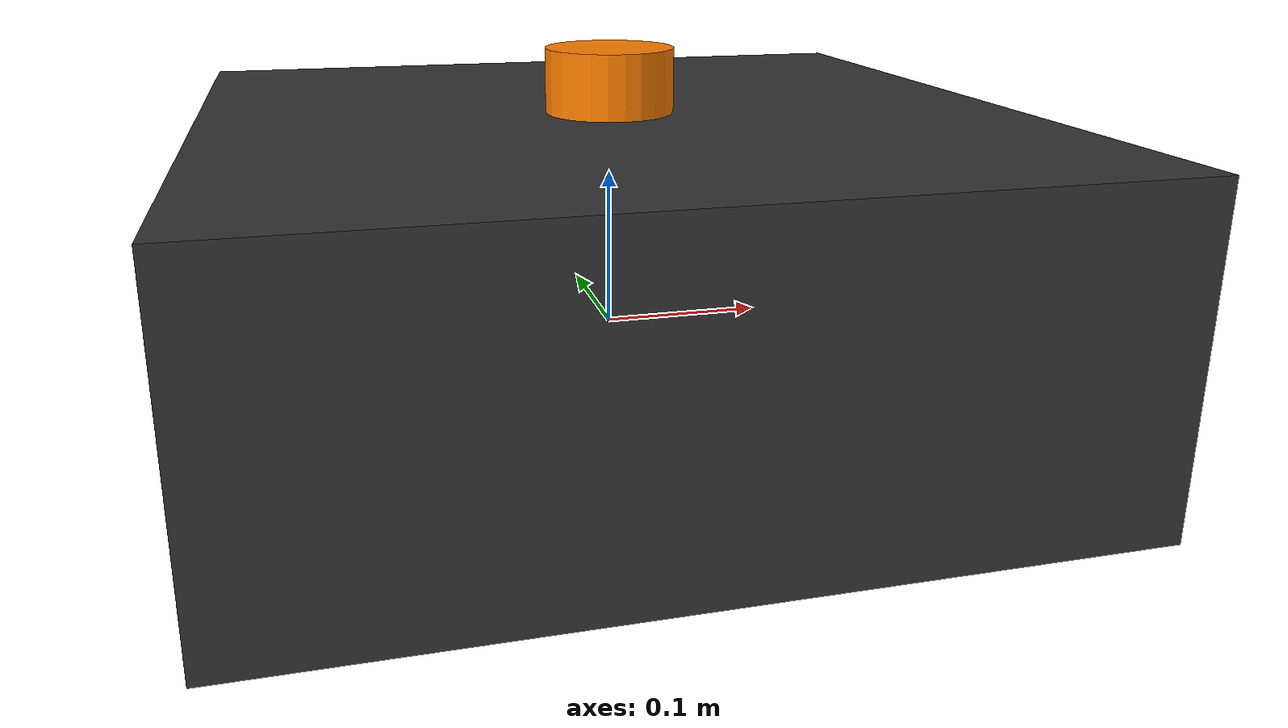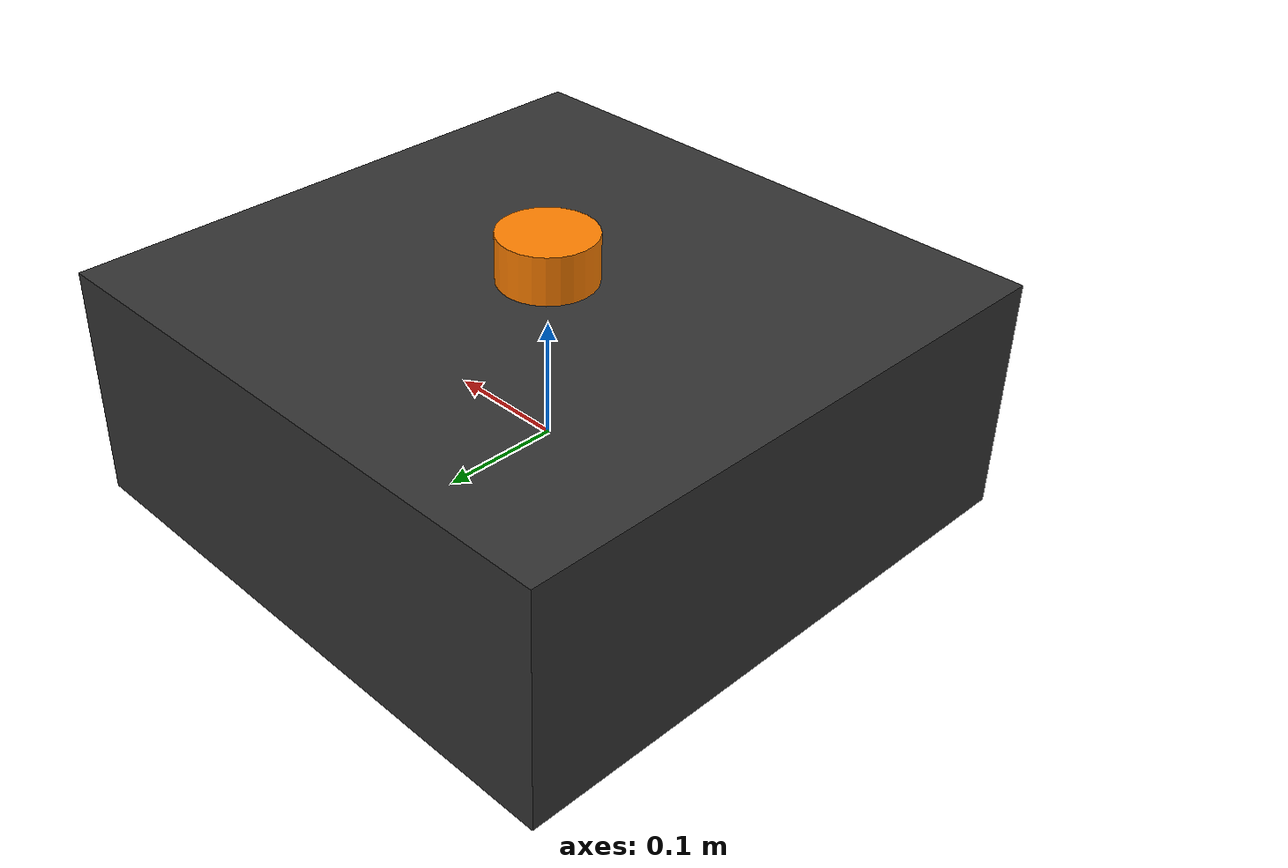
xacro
<?xml version="1.0"?>
<robot name="th_robot" xmlns:xacro="http://www.ros.org/wiki/xacro">

  <!-- ── パラメータ ─────────────────────────────────────────── -->
  <xacro:property name="body_length" value="0.50"/>   <!-- m 前後 -->
  <xacro:property name="body_width"  value="0.50"/>   <!-- m 左右 -->
  <xacro:property name="body_height" value="0.20"/>   <!-- m 上下 -->

  <xacro:property name="wheel_radius"    value="0.0391"/>
  <xacro:property name="wheel_width"     value="0.05"/>
  <xacro:property name="wheel_base"      value="0.39"/>   <!-- 左右ホイール間距離 -->

  <xacro:property name="lidar_height"    value="0.105"/>  <!-- base_link からの高さ -->
  <xacro:property name="lidar_radius"    value="0.04"/>
  <xacro:property name="lidar_thick"     value="0.04"/>

  <xacro:property name="body_mass"       value="8.0"/>    <!-- kg (暫定) -->
  <xacro:property name="wheel_mass"      value="0.3"/>

  <!-- ── インクルード ───────────────────────────────────────── -->
  <xacro:include filename="$(find th_description)/urdf/materials.xacro"/>
  <xacro:include filename="$(find th_description)/urdf/gazebo_plugins.xacro"/>

  <!-- ====================================================
       慣性テンソル ヘルパー
       ==================================================== -->
  <xacro:macro name="box_inertia" params="m x y z">
    <inertial>
      <mass value="${m}"/>
      <inertia ixx="${m/12*(y*y+z*z)}" ixy="0" ixz="0"
               iyy="${m/12*(x*x+z*z)}" iyz="0"
               izz="${m/12*(x*x+y*y)}"/>
    </inertial>
  </xacro:macro>

  <xacro:macro name="cylinder_inertia" params="m r h">
    <inertial>
      <mass value="${m}"/>
      <inertia ixx="${m/12*(3*r*r+h*h)}" ixy="0" ixz="0"
               iyy="${m/12*(3*r*r+h*h)}" iyz="0"
               izz="${m/2*r*r}"/>
    </inertial>
  </xacro:macro>

  <!-- ====================================================
       ホイール マクロ
       ==================================================== -->
  <xacro:macro name="wheel" params="prefix y_offset">
    <link name="${prefix}_wheel">
      <visual>
        <origin xyz="0 0 0" rpy="${pi/2} 0 0"/>
        <geometry>
          <cylinder radius="${wheel_radius}" length="${wheel_width}"/>
        </geometry>
        <material name="black"/>
      </visual>
      <collision>
        <origin xyz="0 0 0" rpy="${pi/2} 0 0"/>
        <geometry>
          <cylinder radius="${wheel_radius}" length="${wheel_width}"/>
        </geometry>
      </collision>
      <xacro:cylinder_inertia m="${wheel_mass}" r="${wheel_radius}" h="${wheel_width}"/>
    </link>

    <joint name="${prefix}_wheel_joint" type="continuous">
      <parent link="base_link"/>
      <child  link="${prefix}_wheel"/>
      <origin xyz="0 ${y_offset} ${-body_height/2 + wheel_radius}" rpy="0 0 0"/>
      <axis xyz="0 1 0"/>
      <dynamics damping="0.05" friction="0.5"/>
    </joint>

    <xacro:gazebo_material_dark_grey link="${prefix}_wheel"/>
  </xacro:macro>

  <!-- ====================================================
       リンク定義
       ==================================================== -->

  <!-- base_footprint: Nav2 が要求する仮想リンク（地面レベル） -->
  <link name="base_footprint"/>

  <joint name="base_footprint_joint" type="fixed">
    <parent link="base_footprint"/>
    <child  link="base_link"/>
    <origin xyz="0 0 ${wheel_radius}" rpy="0 0 0"/>
  </joint>

  <!-- base_link: 車体重心 -->
  <link name="base_link">
    <visual>
      <origin xyz="0 0 0" rpy="0 0 0"/>
      <geometry>
        <box size="${body_length} ${body_width} ${body_height}"/>
      </geometry>
      <material name="dark_grey"/>
    </visual>
    <collision>
      <origin xyz="0 0 0" rpy="0 0 0"/>
      <geometry>
        <box size="${body_length} ${body_width} ${body_height}"/>
      </geometry>
    </collision>
    <xacro:box_inertia m="${body_mass}"
                       x="${body_length}" y="${body_width}" z="${body_height}"/>
  </link>
  <xacro:gazebo_material_dark_grey link="base_link"/>

  <!-- ホイール (左右) -->
  <xacro:wheel prefix="left"  y_offset="${ wheel_base/2}"/>
  <xacro:wheel prefix="right" y_offset="${-wheel_base/2}"/>

  <!-- LiDAR リンク -->
  <link name="laser_link">
    <visual>
      <origin xyz="0 0 0" rpy="0 0 0"/>
      <geometry>
        <cylinder radius="${lidar_radius}" length="${lidar_thick}"/>
      </geometry>
      <material name="orange"/>
    </visual>
    <collision>
      <origin xyz="0 0 0" rpy="0 0 0"/>
      <geometry>
        <cylinder radius="${lidar_radius}" length="${lidar_thick}"/>
      </geometry>
    </collision>
    <inertial>
      <mass value="0.1"/>
      <inertia ixx="0.0001" ixy="0" ixz="0"
               iyy="0.0001" iyz="0" izz="0.0001"/>
    </inertial>
  </link>

  <joint name="laser_joint" type="fixed">
    <parent link="base_link"/>
    <child  link="laser_link"/>
    <origin xyz="0 0 ${body_height/2 + lidar_thick/2}" rpy="0 0 0"/>
  </joint>
  <xacro:gazebo_material_orange link="laser_link"/>

  <!-- IMU リンク (オプション) -->
  <link name="imu_link">
    <inertial>
      <mass value="0.01"/>
      <inertia ixx="0.00001" ixy="0" ixz="0"
               iyy="0.00001" iyz="0" izz="0.00001"/>
    </inertial>
  </link>

  <joint name="imu_joint" type="fixed">
    <parent link="base_link"/>
    <child  link="imu_link"/>
    <origin xyz="0 0 0" rpy="0 0 0"/>
  </joint>

</robot>

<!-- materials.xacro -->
<robot xmlns:xacro="http://www.ros.org/wiki/xacro">

  <!-- ============================================================
       材質定義 (Gazebo / RViz2 共通)
       ============================================================ -->

  <material name="dark_grey">
    <color rgba="0.2 0.2 0.2 1.0"/>
  </material>
  <material name="light_grey">
    <color rgba="0.7 0.7 0.7 1.0"/>
  </material>
  <material name="orange">
    <color rgba="1.0 0.5 0.0 1.0"/>
  </material>
  <material name="black">
    <color rgba="0.1 0.1 0.1 1.0"/>
  </material>
  <material name="blue">
    <color rgba="0.0 0.4 0.8 1.0"/>
  </material>
  <material name="white">
    <color rgba="0.9 0.9 0.9 1.0"/>
  </material>

  <!-- Gazebo 用マテリアル -->
  <xacro:macro name="gazebo_material_dark_grey" params="link">
    <gazebo reference="${link}">
      <material>Gazebo/DarkGrey</material>
    </gazebo>
  </xacro:macro>

  <xacro:macro name="gazebo_material_orange" params="link">
    <gazebo reference="${link}">
      <material>Gazebo/Orange</material>
    </gazebo>
  </xacro:macro>

</robot>
